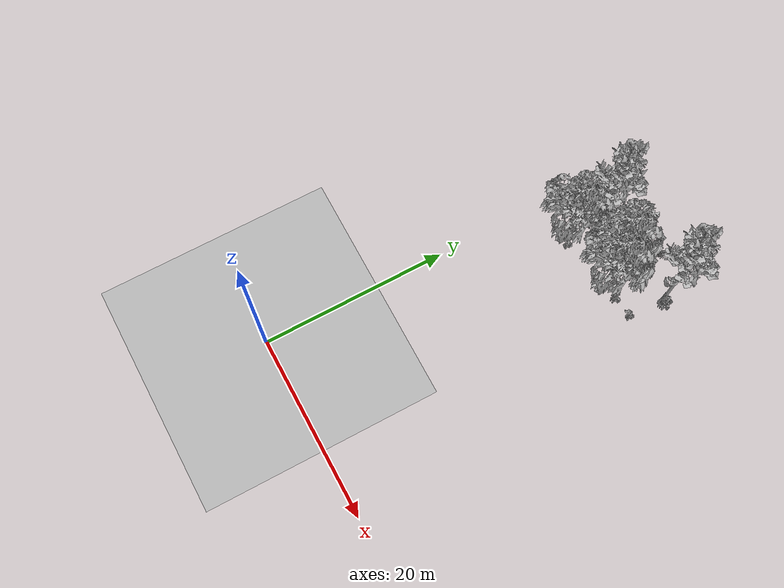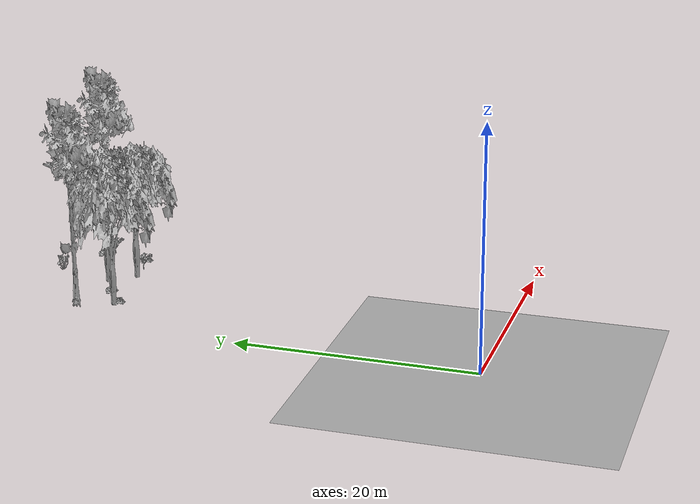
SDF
<sdf version="1.7">
 <world name="default">
  <model name="ground_plane">
   <static>1</static>
   <link name="link">
    <collision name="collision">
     <pose>-50 0 0 0 -0 0</pose>
     <geometry><plane><normal>0 0 1</normal><size>80 80</size></plane></geometry>
     <surface><contact><ode><min_depth>0.01</min_depth><max_vel>0</max_vel></ode></contact></surface>
    </collision>
    <visual name="grass">
     <cast_shadows>0</cast_shadows>
     <geometry>
      <mesh>
       <scale>0.46714285714285714 0.46714285714285714 0.1</scale>
       <uri>file://grass_plane/meshes/grass_plane.dae</uri>
      </mesh>
     </geometry>
    </visual>
   </link>
  </model>
  <model name="Tree 85">
   <static>1</static>
   <pose>10.984075858313297 32.97472801579093 0 1.57079 -0 0</pose>
   <link name="link">
    <collision name="collision">
     <geometry><mesh><scale>3.5 5 3.5</scale><uri>model://tree_2/meshes/tree_2.obj</uri></mesh></geometry>
    </collision>
    <visual name="visual">
     <geometry><mesh><scale>3.5 5 3.5</scale><uri>model://tree_2/meshes/tree_2.obj</uri></mesh></geometry>
    </visual>
   </link>
  </model>
  <model name="Tree 238">
   <static>1</static>
   <pose>5.209072629516889 36.026993212002566 0 1.57079 -0 0</pose>
   <link name="link">
    <collision name="collision">
     <geometry><mesh><scale>3.5 5 3.5</scale><uri>model://tree_9/meshes/tree_9.obj</uri></mesh></geometry>
    </collision>
    <visual name="visual">
     <geometry><mesh><scale>3.5 5 3.5</scale><uri>model://tree_9/meshes/tree_9.obj</uri></mesh></geometry>
    </visual>
   </link>
  </model>
  <model name="Tree 539">
   <static>1</static>
   <pose>15.152961460650978 37.302745100333595 0 1.57079 -0 0</pose>
   <link name="link">
    <collision name="collision">
     <geometry><mesh><scale>3.5 5 3.5</scale><uri>model://tree_9/meshes/tree_9.obj</uri></mesh></geometry>
    </collision>
    <visual name="visual">
     <geometry><mesh><scale>3.5 5 3.5</scale><uri>model://tree_9/meshes/tree_9.obj</uri></mesh></geometry>
    </visual>
   </link>
  </model>
  <model name="Tree 545">
   <static>1</static>
   <pose>4.639903646063196 32.38516605837029 0 1.57079 -0 0</pose>
   <link name="link">
    <collision name="collision">
     <geometry><mesh><scale>3.5 5 3.5</scale><uri>model://tree_2/meshes/tree_2.obj</uri></mesh></geometry>
    </collision>
    <visual name="visual">
     <geometry><mesh><scale>3.5 5 3.5</scale><uri>model://tree_2/meshes/tree_2.obj</uri></mesh></geometry>
    </visual>
   </link>
  </model>
  <model name="Tree 584">
   <static>1</static>
   <pose>9.338279002837531 34.93062079657574 0 1.57079 -0 0</pose>
   <link name="link">
    <collision name="collision">
     <geometry><mesh><scale>3.5 5 3.5</scale><uri>model://tree_2/meshes/tree_2.obj</uri></mesh></geometry>
    </collision>
    <visual name="visual">
     <geometry><mesh><scale>3.5 5 3.5</scale><uri>model://tree_2/meshes/tree_2.obj</uri></mesh></geometry>
    </visual>
   </link>
  </model>
  <model name="Bush 40">
   <static>1</static>
   <pose>15.286360759218852 37.940916046874534 0 1.57079 -0 0</pose>
   <link name="link">
    <collision name="collision">
     <geometry><mesh><scale>2 2 2</scale><uri>model://bush_2/meshes/bush_2.obj</uri></mesh></geometry>
     <surface><contact><collide_without_contact>false</collide_without_contact></contact></surface>
    </collision>
    <visual name="visual">
     <geometry><mesh><scale>2 2 2</scale><uri>model://bush_2/meshes/bush_2.obj</uri></mesh></geometry>
    </visual>
   </link>
  </model>
  <model name="Bush 78">
   <static>1</static>
   <pose>7.335187621269945 33.73209192995438 0 1.57079 -0 0</pose>
   <link name="link">
    <collision name="collision">
     <geometry><mesh><scale>2 2 2</scale><uri>model://bush_2/meshes/bush_2.obj</uri></mesh></geometry>
     <surface><contact><collide_without_contact>false</collide_without_contact></contact></surface>
    </collision>
    <visual name="visual">
     <geometry><mesh><scale>2 2 2</scale><uri>model://bush_2/meshes/bush_2.obj</uri></mesh></geometry>
    </visual>
   </link>
  </model>
  <model name="Bush 104">
   <static>1</static>
   <pose>12.863311251814935 33.13198622672647 0 1.57079 -0 0</pose>
   <link name="link">
    <collision name="collision">
     <geometry><mesh><scale>2 2 2</scale><uri>model://bush_5/meshes/bush_5.obj</uri></mesh></geometry>
     <surface><contact><collide_without_contact>false</collide_without_contact></contact></surface>
    </collision>
    <visual name="visual">
     <geometry><mesh><scale>2 2 2</scale><uri>model://bush_5/meshes/bush_5.obj</uri></mesh></geometry>
    </visual>
   </link>
  </model>
  <model name="Bush 267">
   <static>1</static>
   <pose>10.899720127229571 39.82914231634746 0 1.57079 -0 0</pose>
   <link name="link">
    <collision name="collision">
     <geometry><mesh><scale>2 2 2</scale><uri>model://bush_4/meshes/bush_4.obj</uri></mesh></geometry>
     <surface><contact><collide_without_contact>false</collide_without_contact></contact></surface>
    </collision>
    <visual name="visual">
     <geometry><mesh><scale>2 2 2</scale><uri>model://bush_4/meshes/bush_4.obj</uri></mesh></geometry>
    </visual>
   </link>
  </model>
  <model name="Bush 321">
   <static>1</static>
   <pose>15.848321560907145 37.0933025644447 0 1.57079 -0 0</pose>
   <link name="link">
    <collision name="collision">
     <geometry><mesh><scale>2 2 2</scale><uri>model://bush_5/meshes/bush_5.obj</uri></mesh></geometry>
     <surface><contact><collide_without_contact>false</collide_without_contact></contact></surface>
    </collision>
    <visual name="visual">
     <geometry><mesh><scale>2 2 2</scale><uri>model://bush_5/meshes/bush_5.obj</uri></mesh></geometry>
    </visual>
   </link>
  </model>
  <model name="Bush 448">
   <static>1</static>
   <pose>14.766901951296596 33.65733054189339 0 1.57079 -0 0</pose>
   <link name="link">
    <collision name="collision">
     <geometry><mesh><scale>2 2 2</scale><uri>model://bush_2/meshes/bush_2.obj</uri></mesh></geometry>
     <surface><contact><collide_without_contact>false</collide_without_contact></contact></surface>
    </collision>
    <visual name="visual">
     <geometry><mesh><scale>2 2 2</scale><uri>model://bush_2/meshes/bush_2.obj</uri></mesh></geometry>
    </visual>
   </link>
  </model>
  <model name="Bush 557">
   <static>1</static>
   <pose>5.125309915083243 32.124887194081964 0 1.57079 -0 0</pose>
   <link name="link">
    <collision name="collision">
     <geometry><mesh><scale>2 2 2</scale><uri>model://bush_2/meshes/bush_2.obj</uri></mesh></geometry>
     <surface><contact><collide_without_contact>false</collide_without_contact></contact></surface>
    </collision>
    <visual name="visual">
     <geometry><mesh><scale>2 2 2</scale><uri>model://bush_2/meshes/bush_2.obj</uri></mesh></geometry>
    </visual>
   </link>
  </model>
 </world>
</sdf>
